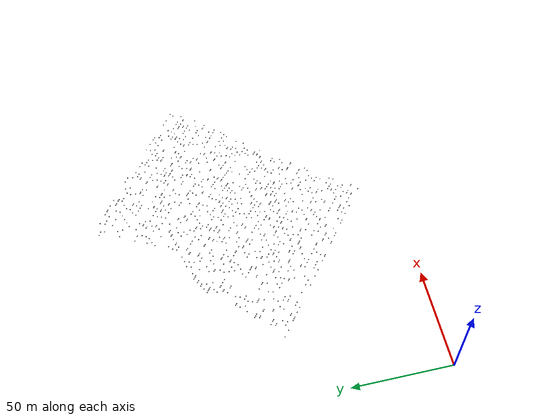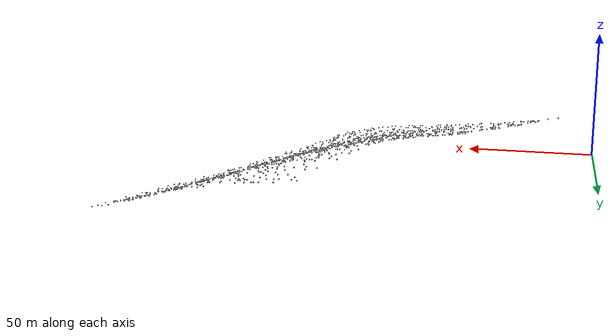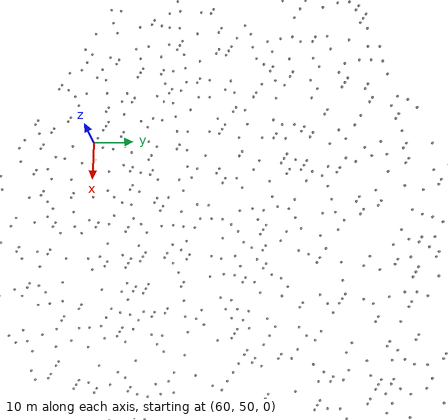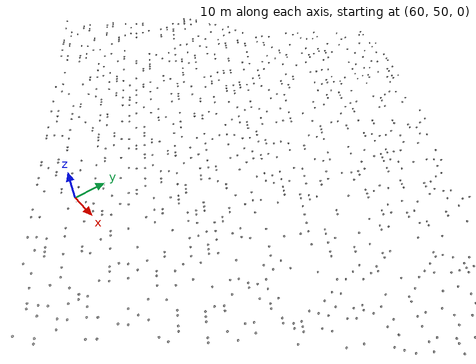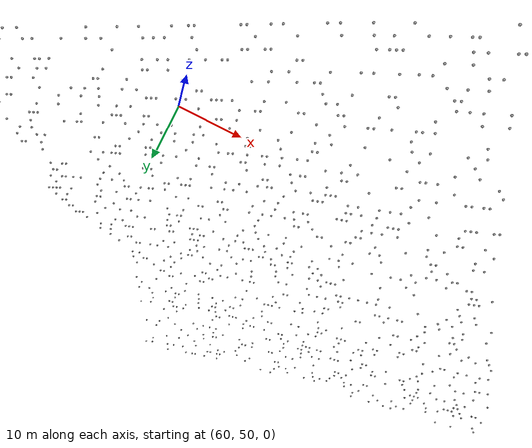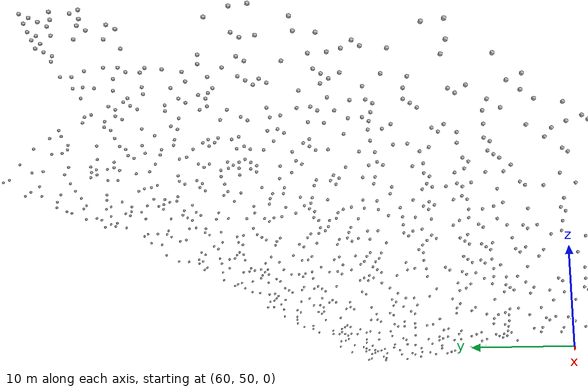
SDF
<?xml version="1.0" ?>
<sdf version="1.4">
    <model name="plant_marker">
        <link name="plant_marker_link">
            <visual name="plant_marker_visual">
                <geometry>
                    <mesh>
                        <uri>meshes/visual/plant_marker.obj</uri>
                    </mesh>
                </geometry>
            </visual>
        </link>
        <static>True</static>
    </model>
</sdf>
